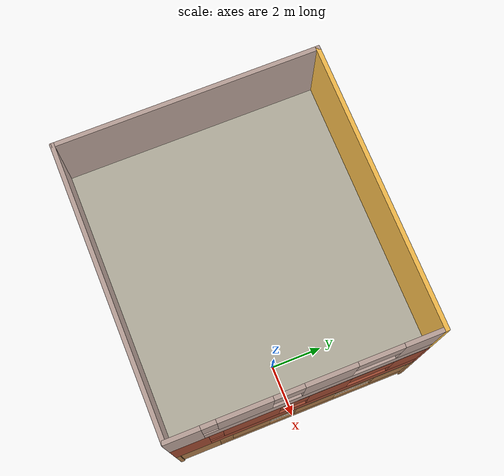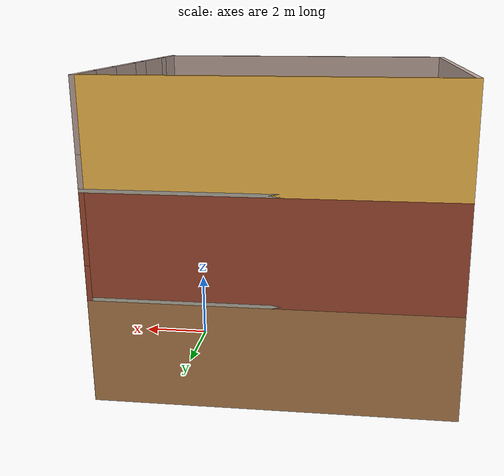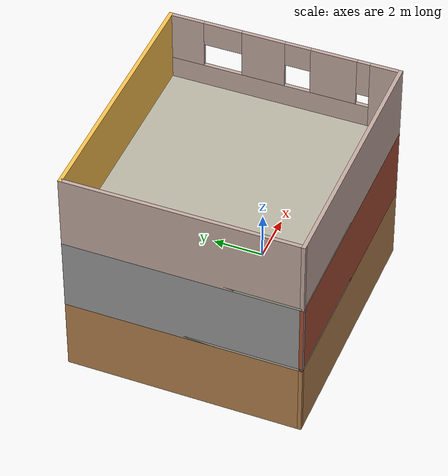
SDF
<?xml version='1.0'?>
<sdf version='1.6'>
  <model name='predio'>
    <pose frame=''>-2.925 0 0 0 -0 0</pose>
    <link name='Floor_2'>
      <collision name='Floor_2_Collision'>
        <geometry>
          <box>
            <size>10 9.15 0.1</size>
          </box>
        </geometry>
        <pose frame=''>0 0 0.05 0 -0 0</pose>
      </collision>
      <visual name='Floor_2_Visual'>
        <pose frame=''>0 0 0.05 0 -0 0</pose>
        <geometry>
          <box>
            <size>10 9.15 0.1</size>
          </box>
        </geometry>
        <material>
          <script>
            <uri>file://media/materials/scripts/gazebo.material</uri>
            <name>Gazebo/Grey</name>
          </script>
          <ambient>0.729412 0.709804 0.643137 1</ambient>
        </material>
        <meta>
          <layer>1</layer>
        </meta>
      </visual>
      <pose frame=''>0 0 3 0 -0 0</pose>
    </link>
    <link name='Floor_3'>
      <collision name='Floor_3_Collision'>
        <geometry>
          <box>
            <size>10 9.15 0.1</size>
          </box>
        </geometry>
        <pose frame=''>0 0 0.05 0 -0 0</pose>
      </collision>
      <visual name='Floor_3_Visual'>
        <pose frame=''>0 0 0.05 0 -0 0</pose>
        <geometry>
          <box>
            <size>10 9.15 0.1</size>
          </box>
        </geometry>
        <material>
          <script>
            <uri>file://media/materials/scripts/gazebo.material</uri>
            <name>Gazebo/Grey</name>
          </script>
          <ambient>0.729412 0.709804 0.643137 1</ambient>
        </material>
        <meta>
          <layer>2</layer>
        </meta>
      </visual>
      <pose frame=''>0 0 6 0 -0 0</pose>
    </link>
    <link name='Wall_10'>
      <pose frame=''>4.925 0 0 0 -0 1.5708</pose>
      <visual name='Wall_10_Visual_0'>
        <pose frame=''>-3.7277 0 1.5 0 -0 0</pose>
        <geometry>
          <box>
            <size>1.5946 0.05 3</size>
          </box>
        </geometry>
        <material>
          <script>
            <uri>file://media/materials/scripts/gazebo.material</uri>
            <name>Gazebo/Wood</name>
          </script>
          <ambient>1 1 1 1</ambient>
        </material>
        <meta>
          <layer>0</layer>
        </meta>
      </visual>
      <collision name='Wall_10_Collision_0'>
        <geometry>
          <box>
            <size>1.5946 0.05 3</size>
          </box>
        </geometry>
        <pose frame=''>-3.7277 0 1.5 0 -0 0</pose>
      </collision>
      <visual name='Wall_10_Visual_1'>
        <pose frame=''>0.797301 0 0.375 0 -0 0</pose>
        <geometry>
          <box>
            <size>7.4554 0.05 0.75</size>
          </box>
        </geometry>
        <material>
          <script>
            <uri>file://media/materials/scripts/gazebo.material</uri>
            <name>Gazebo/Wood</name>
          </script>
          <ambient>1 1 1 1</ambient>
        </material>
        <meta>
          <layer>0</layer>
        </meta>
      </visual>
      <collision name='Wall_10_Collision_1'>
        <geometry>
          <box>
            <size>7.4554 0.05 0.75</size>
          </box>
        </geometry>
        <pose frame=''>0.797301 0 0.375 0 -0 0</pose>
      </collision>
      <visual name='Wall_10_Visual_2'>
        <pose frame=''>-1.69976 0 1.875 0 -0 0</pose>
        <geometry>
          <box>
            <size>1.46128 0.05 2.25</size>
          </box>
        </geometry>
        <material>
          <script>
            <uri>file://media/materials/scripts/gazebo.material</uri>
            <name>Gazebo/Wood</name>
          </script>
          <ambient>1 1 1 1</ambient>
        </material>
        <meta>
          <layer>0</layer>
        </meta>
      </visual>
      <collision name='Wall_10_Collision_2'>
        <geometry>
          <box>
            <size>1.46128 0.05 2.25</size>
          </box>
        </geometry>
        <pose frame=''>-1.69976 0 1.875 0 -0 0</pose>
      </collision>
      <visual name='Wall_10_Visual_3'>
        <pose frame=''>0.817168 0 1.875 0 -0 0</pose>
        <geometry>
          <box>
            <size>1.57256 0.05 2.25</size>
          </box>
        </geometry>
        <material>
          <script>
            <uri>file://media/materials/scripts/gazebo.material</uri>
            <name>Gazebo/Wood</name>
          </script>
          <ambient>1 1 1 1</ambient>
        </material>
        <meta>
          <layer>0</layer>
        </meta>
      </visual>
      <collision name='Wall_10_Collision_3'>
        <geometry>
          <box>
            <size>1.57256 0.05 2.25</size>
          </box>
        </geometry>
        <pose frame=''>0.817168 0 1.875 0 -0 0</pose>
      </collision>
      <visual name='Wall_10_Visual_4'>
        <pose frame=''>3.81422 0 1.875 0 -0 0</pose>
        <geometry>
          <box>
            <size>1.42155 0.05 2.25</size>
          </box>
        </geometry>
        <material>
          <script>
            <uri>file://media/materials/scripts/gazebo.material</uri>
            <name>Gazebo/Wood</name>
          </script>
          <ambient>1 1 1 1</ambient>
        </material>
        <meta>
          <layer>0</layer>
        </meta>
      </visual>
      <collision name='Wall_10_Collision_4'>
        <geometry>
          <box>
            <size>1.42155 0.05 2.25</size>
          </box>
        </geometry>
        <pose frame=''>3.81422 0 1.875 0 -0 0</pose>
      </collision>
      <visual name='Wall_10_Visual_5'>
        <pose frame=''>-2.6804 0 2.125 0 -0 0</pose>
        <geometry>
          <box>
            <size>0.5 0.05 1.75</size>
          </box>
        </geometry>
        <material>
          <script>
            <uri>file://media/materials/scripts/gazebo.material</uri>
            <name>Gazebo/Wood</name>
          </script>
          <ambient>1 1 1 1</ambient>
        </material>
        <meta>
          <layer>0</layer>
        </meta>
      </visual>
      <collision name='Wall_10_Collision_5'>
        <geometry>
          <box>
            <size>0.5 0.05 1.75</size>
          </box>
        </geometry>
        <pose frame=''>-2.6804 0 2.125 0 -0 0</pose>
      </collision>
      <visual name='Wall_10_Visual_6'>
        <pose frame=''>-0.469115 0 2.375 0 -0 0</pose>
        <geometry>
          <box>
            <size>1 0.05 1.25</size>
          </box>
        </geometry>
        <material>
          <script>
            <uri>file://media/materials/scripts/gazebo.material</uri>
            <name>Gazebo/Wood</name>
          </script>
          <ambient>1 1 1 1</ambient>
        </material>
        <meta>
          <layer>0</layer>
        </meta>
      </visual>
      <collision name='Wall_10_Collision_6'>
        <geometry>
          <box>
            <size>1 0.05 1.25</size>
          </box>
        </geometry>
        <pose frame=''>-0.469115 0 2.375 0 -0 0</pose>
      </collision>
      <visual name='Wall_10_Visual_7'>
        <pose frame=''>2.35345 0 2.375 0 -0 0</pose>
        <geometry>
          <box>
            <size>1.5 0.05 1.25</size>
          </box>
        </geometry>
        <material>
          <script>
            <uri>file://media/materials/scripts/gazebo.material</uri>
            <name>Gazebo/Wood</name>
          </script>
          <ambient>1 1 1 1</ambient>
        </material>
        <meta>
          <layer>0</layer>
        </meta>
      </visual>
      <collision name='Wall_10_Collision_7'>
        <geometry>
          <box>
            <size>1.5 0.05 1.25</size>
          </box>
        </geometry>
        <pose frame=''>2.35345 0 2.375 0 -0 0</pose>
      </collision>
    </link>
    <link name='Wall_14'>
      <collision name='Wall_14_Collision'>
        <geometry>
          <box>
            <size>10 0.15 3</size>
          </box>
        </geometry>
        <pose frame=''>0 0 1.5 0 -0 0</pose>
      </collision>
      <visual name='Wall_14_Visual'>
        <pose frame=''>0 0 1.5 0 -0 0</pose>
        <geometry>
          <box>
            <size>10 0.15 3</size>
          </box>
        </geometry>
        <material>
          <script>
            <uri>file://media/materials/scripts/gazebo.material</uri>
            <name>Gazebo/Wood</name>
          </script>
          <ambient>1 1 1 1</ambient>
        </material>
        <meta>
          <layer>0</layer>
        </meta>
      </visual>
      <pose frame=''>0 -4.5 0 0 -0 3.14159</pose>
    </link>
    <link name='Wall_15'>
      <collision name='Wall_15_Collision'>
        <geometry>
          <box>
            <size>9.15 0.15 3</size>
          </box>
        </geometry>
        <pose frame=''>0 0 1.5 0 -0 0</pose>
      </collision>
      <visual name='Wall_15_Visual'>
        <pose frame=''>0 0 1.5 0 -0 0</pose>
        <geometry>
          <box>
            <size>9.15 0.15 3</size>
          </box>
        </geometry>
        <material>
          <script>
            <uri>file://media/materials/scripts/gazebo.material</uri>
            <name>Gazebo/Wood</name>
          </script>
          <ambient>1 1 1 1</ambient>
        </material>
        <meta>
          <layer>0</layer>
        </meta>
      </visual>
      <pose frame=''>-4.925 0 0 0 -0 1.5708</pose>
    </link>
    <link name='Wall_18'>
      <collision name='Wall_18_Collision'>
        <geometry>
          <box>
            <size>10 0.15 3</size>
          </box>
        </geometry>
        <pose frame=''>0 0 1.5 0 -0 0</pose>
      </collision>
      <visual name='Wall_18_Visual'>
        <pose frame=''>0 0 1.5 0 -0 0</pose>
        <geometry>
          <box>
            <size>10 0.15 3</size>
          </box>
        </geometry>
        <material>
          <script>
            <uri>file://media/materials/scripts/gazebo.material</uri>
            <name>Gazebo/Wood</name>
          </script>
          <ambient>1 1 1 1</ambient>
        </material>
        <meta>
          <layer>0</layer>
        </meta>
      </visual>
      <pose frame=''>0 4.5 0 0 -0 3.14159</pose>
    </link>
    <link name='Wall_28'>
      <pose frame=''>4.925 0 3 0 -0 1.5708</pose>
      <visual name='Wall_28_Visual_0'>
        <pose frame=''>-3.90461 0 1.5 0 -0 0</pose>
        <geometry>
          <box>
            <size>1.34077 0.15 3</size>
          </box>
        </geometry>
        <material>
          <script>
            <uri>file://media/materials/scripts/gazebo.material</uri>
            <name>Gazebo/Bricks</name>
          </script>
          <ambient>1 1 1 1</ambient>
        </material>
        <meta>
          <layer>1</layer>
        </meta>
      </visual>
      <collision name='Wall_28_Collision_0'>
        <geometry>
          <box>
            <size>1.34077 0.15 3</size>
          </box>
        </geometry>
        <pose frame=''>-3.90461 0 1.5 0 -0 0</pose>
      </collision>
      <visual name='Wall_28_Visual_1'>
        <pose frame=''>0.670387 0 0.5 0 -0 0</pose>
        <geometry>
          <box>
            <size>7.80923 0.15 1</size>
          </box>
        </geometry>
        <material>
          <script>
            <uri>file://media/materials/scripts/gazebo.material</uri>
            <name>Gazebo/Bricks</name>
          </script>
          <ambient>1 1 1 1</ambient>
        </material>
        <meta>
          <layer>1</layer>
        </meta>
      </visual>
      <collision name='Wall_28_Collision_1'>
        <geometry>
          <box>
            <size>7.80923 0.15 1</size>
          </box>
        </geometry>
        <pose frame=''>0.670387 0 0.5 0 -0 0</pose>
      </collision>
      <visual name='Wall_28_Visual_2'>
        <pose frame=''>-1.73374 0 2 0 -0 0</pose>
        <geometry>
          <box>
            <size>2.00098 0.15 2</size>
          </box>
        </geometry>
        <material>
          <script>
            <uri>file://media/materials/scripts/gazebo.material</uri>
            <name>Gazebo/Bricks</name>
          </script>
          <ambient>1 1 1 1</ambient>
        </material>
        <meta>
          <layer>1</layer>
        </meta>
      </visual>
      <collision name='Wall_28_Collision_2'>
        <geometry>
          <box>
            <size>2.00098 0.15 2</size>
          </box>
        </geometry>
        <pose frame=''>-1.73374 0 2 0 -0 0</pose>
      </collision>
      <visual name='Wall_28_Visual_3'>
        <pose frame=''>1.01724 0 2 0 -0 0</pose>
        <geometry>
          <box>
            <size>1.50098 0.15 2</size>
          </box>
        </geometry>
        <material>
          <script>
            <uri>file://media/materials/scripts/gazebo.material</uri>
            <name>Gazebo/Bricks</name>
          </script>
          <ambient>1 1 1 1</ambient>
        </material>
        <meta>
          <layer>1</layer>
        </meta>
      </visual>
      <collision name='Wall_28_Collision_3'>
        <geometry>
          <box>
            <size>1.50098 0.15 2</size>
          </box>
        </geometry>
        <pose frame=''>1.01724 0 2 0 -0 0</pose>
      </collision>
      <visual name='Wall_28_Visual_4'>
        <pose frame=''>3.92137 0 2 0 -0 0</pose>
        <geometry>
          <box>
            <size>1.30727 0.15 2</size>
          </box>
        </geometry>
        <material>
          <script>
            <uri>file://media/materials/scripts/gazebo.material</uri>
            <name>Gazebo/Bricks</name>
          </script>
          <ambient>1 1 1 1</ambient>
        </material>
        <meta>
          <layer>1</layer>
        </meta>
      </visual>
      <collision name='Wall_28_Collision_4'>
        <geometry>
          <box>
            <size>1.30727 0.15 2</size>
          </box>
        </geometry>
        <pose frame=''>3.92137 0 2 0 -0 0</pose>
      </collision>
      <visual name='Wall_28_Visual_5'>
        <pose frame=''>-2.98423 0 2.25 0 -0 0</pose>
        <geometry>
          <box>
            <size>0.5 0.15 1.5</size>
          </box>
        </geometry>
        <material>
          <script>
            <uri>file://media/materials/scripts/gazebo.material</uri>
            <name>Gazebo/Bricks</name>
          </script>
          <ambient>1 1 1 1</ambient>
        </material>
        <meta>
          <layer>1</layer>
        </meta>
      </visual>
      <collision name='Wall_28_Collision_5'>
        <geometry>
          <box>
            <size>0.5 0.15 1.5</size>
          </box>
        </geometry>
        <pose frame=''>-2.98423 0 2.25 0 -0 0</pose>
      </collision>
      <visual name='Wall_28_Visual_6'>
        <pose frame=''>-0.233247 0 2.5 0 -0 0</pose>
        <geometry>
          <box>
            <size>1 0.15 1</size>
          </box>
        </geometry>
        <material>
          <script>
            <uri>file://media/materials/scripts/gazebo.material</uri>
            <name>Gazebo/Bricks</name>
          </script>
          <ambient>1 1 1 1</ambient>
        </material>
        <meta>
          <layer>1</layer>
        </meta>
      </visual>
      <collision name='Wall_28_Collision_6'>
        <geometry>
          <box>
            <size>1 0.15 1</size>
          </box>
        </geometry>
        <pose frame=''>-0.233247 0 2.5 0 -0 0</pose>
      </collision>
      <visual name='Wall_28_Visual_7'>
        <pose frame=''>2.51773 0 2.5 0 -0 0</pose>
        <geometry>
          <box>
            <size>1.5 0.15 1</size>
          </box>
        </geometry>
        <material>
          <script>
            <uri>file://media/materials/scripts/gazebo.material</uri>
            <name>Gazebo/Bricks</name>
          </script>
          <ambient>1 1 1 1</ambient>
        </material>
        <meta>
          <layer>1</layer>
        </meta>
      </visual>
      <collision name='Wall_28_Collision_7'>
        <geometry>
          <box>
            <size>1.5 0.15 1</size>
          </box>
        </geometry>
        <pose frame=''>2.51773 0 2.5 0 -0 0</pose>
      </collision>
    </link>
    <link name='Wall_29'>
      <collision name='Wall_29_Collision'>
        <geometry>
          <box>
            <size>10 0.15 3</size>
          </box>
        </geometry>
        <pose frame=''>0 0 1.5 0 -0 0</pose>
      </collision>
      <visual name='Wall_29_Visual'>
        <pose frame=''>0 0 1.5 0 -0 0</pose>
        <geometry>
          <box>
            <size>10 0.15 3</size>
          </box>
        </geometry>
        <material>
          <script>
            <uri>file://media/materials/scripts/gazebo.material</uri>
            <name>Gazebo/Bricks</name>
          </script>
          <ambient>1 1 1 1</ambient>
        </material>
        <meta>
          <layer>1</layer>
        </meta>
      </visual>
      <pose frame=''>0 -4.5 3 0 -0 3.14159</pose>
    </link>
    <link name='Wall_30'>
      <collision name='Wall_30_Collision'>
        <geometry>
          <box>
            <size>9.15 0.15 3</size>
          </box>
        </geometry>
        <pose frame=''>0 0 1.5 0 -0 0</pose>
      </collision>
      <visual name='Wall_30_Visual'>
        <pose frame=''>0 0 1.5 0 -0 0</pose>
        <geometry>
          <box>
            <size>9.15 0.15 3</size>
          </box>
        </geometry>
        <material>
          <script>
            <uri>file://media/materials/scripts/gazebo.material</uri>
            <name>Gazebo/Grey</name>
          </script>
          <ambient>1 1 1 1</ambient>
        </material>
        <meta>
          <layer>1</layer>
        </meta>
      </visual>
      <pose frame=''>-4.925 0 3 0 -0 1.5708</pose>
    </link>
    <link name='Wall_31'>
      <collision name='Wall_31_Collision'>
        <geometry>
          <box>
            <size>10 0.15 3</size>
          </box>
        </geometry>
        <pose frame=''>0 0 1.5 0 -0 0</pose>
      </collision>
      <visual name='Wall_31_Visual'>
        <pose frame=''>0 0 1.5 0 -0 0</pose>
        <geometry>
          <box>
            <size>10 0.15 3</size>
          </box>
        </geometry>
        <material>
          <script>
            <uri>file://media/materials/scripts/gazebo.material</uri>
            <name>Gazebo/Bricks</name>
          </script>
          <ambient>1 1 1 1</ambient>
        </material>
        <meta>
          <layer>1</layer>
        </meta>
      </visual>
      <pose frame=''>0 4.5 3 0 -0 3.14159</pose>
    </link>
    <link name='Wall_32'>
      <pose frame=''>4.925 0 6 0 -0 1.5708</pose>
      <visual name='Wall_32_Visual_0'>
        <pose frame=''>-3.9653 0 1.5 0 -0 0</pose>
        <geometry>
          <box>
            <size>1.21941 0.15 3</size>
          </box>
        </geometry>
        <material>
          <script>
            <uri>file://media/materials/scripts/gazebo.material</uri>
            <name>Gazebo/Grey</name>
          </script>
          <ambient>0.760784 0.662745 0.627451 1</ambient>
        </material>
        <meta>
          <layer>2</layer>
        </meta>
      </visual>
      <collision name='Wall_32_Collision_0'>
        <geometry>
          <box>
            <size>1.21941 0.15 3</size>
          </box>
        </geometry>
        <pose frame=''>-3.9653 0 1.5 0 -0 0</pose>
      </collision>
      <visual name='Wall_32_Visual_1'>
        <pose frame=''>0.609704 0 0.5 0 -0 0</pose>
        <geometry>
          <box>
            <size>7.93059 0.15 1</size>
          </box>
        </geometry>
        <material>
          <script>
            <uri>file://media/materials/scripts/gazebo.material</uri>
            <name>Gazebo/Grey</name>
          </script>
          <ambient>0.760784 0.662745 0.627451 1</ambient>
        </material>
        <meta>
          <layer>2</layer>
        </meta>
      </visual>
      <collision name='Wall_32_Collision_1'>
        <geometry>
          <box>
            <size>7.93059 0.15 1</size>
          </box>
        </geometry>
        <pose frame=''>0.609704 0 0.5 0 -0 0</pose>
      </collision>
      <visual name='Wall_32_Visual_2'>
        <pose frame=''>-1.95624 0 2 0 -0 0</pose>
        <geometry>
          <box>
            <size>1.7987 0.15 2</size>
          </box>
        </geometry>
        <material>
          <script>
            <uri>file://media/materials/scripts/gazebo.material</uri>
            <name>Gazebo/Grey</name>
          </script>
          <ambient>0.760784 0.662745 0.627451 1</ambient>
        </material>
        <meta>
          <layer>2</layer>
        </meta>
      </visual>
      <collision name='Wall_32_Collision_2'>
        <geometry>
          <box>
            <size>1.7987 0.15 2</size>
          </box>
        </geometry>
        <pose frame=''>-1.95624 0 2 0 -0 0</pose>
      </collision>
      <visual name='Wall_32_Visual_3'>
        <pose frame=''>0.794737 0 2 0 -0 0</pose>
        <geometry>
          <box>
            <size>1.70326 0.15 2</size>
          </box>
        </geometry>
        <material>
          <script>
            <uri>file://media/materials/scripts/gazebo.material</uri>
            <name>Gazebo/Grey</name>
          </script>
          <ambient>0.760784 0.662745 0.627451 1</ambient>
        </material>
        <meta>
          <layer>2</layer>
        </meta>
      </visual>
      <collision name='Wall_32_Collision_3'>
        <geometry>
          <box>
            <size>1.70326 0.15 2</size>
          </box>
        </geometry>
        <pose frame=''>0.794737 0 2 0 -0 0</pose>
      </collision>
      <visual name='Wall_32_Visual_4'>
        <pose frame=''>3.86068 0 2 0 -0 0</pose>
        <geometry>
          <box>
            <size>1.42864 0.15 2</size>
          </box>
        </geometry>
        <material>
          <script>
            <uri>file://media/materials/scripts/gazebo.material</uri>
            <name>Gazebo/Grey</name>
          </script>
          <ambient>0.760784 0.662745 0.627451 1</ambient>
        </material>
        <meta>
          <layer>2</layer>
        </meta>
      </visual>
      <collision name='Wall_32_Collision_4'>
        <geometry>
          <box>
            <size>1.42864 0.15 2</size>
          </box>
        </geometry>
        <pose frame=''>3.86068 0 2 0 -0 0</pose>
      </collision>
      <visual name='Wall_32_Visual_5'>
        <pose frame=''>-3.10559 0 2.25 0 -0 0</pose>
        <geometry>
          <box>
            <size>0.5 0.15 1.5</size>
          </box>
        </geometry>
        <material>
          <script>
            <uri>file://media/materials/scripts/gazebo.material</uri>
            <name>Gazebo/Grey</name>
          </script>
          <ambient>0.760784 0.662745 0.627451 1</ambient>
        </material>
        <meta>
          <layer>2</layer>
        </meta>
      </visual>
      <collision name='Wall_32_Collision_5'>
        <geometry>
          <box>
            <size>0.5 0.15 1.5</size>
          </box>
        </geometry>
        <pose frame=''>-3.10559 0 2.25 0 -0 0</pose>
      </collision>
      <visual name='Wall_32_Visual_6'>
        <pose frame=''>-0.556892 0 2.5 0 -0 0</pose>
        <geometry>
          <box>
            <size>1 0.15 1</size>
          </box>
        </geometry>
        <material>
          <script>
            <uri>file://media/materials/scripts/gazebo.material</uri>
            <name>Gazebo/Grey</name>
          </script>
          <ambient>0.760784 0.662745 0.627451 1</ambient>
        </material>
        <meta>
          <layer>2</layer>
        </meta>
      </visual>
      <collision name='Wall_32_Collision_6'>
        <geometry>
          <box>
            <size>1 0.15 1</size>
          </box>
        </geometry>
        <pose frame=''>-0.556892 0 2.5 0 -0 0</pose>
      </collision>
      <visual name='Wall_32_Visual_7'>
        <pose frame=''>2.39636 0 2.5 0 -0 0</pose>
        <geometry>
          <box>
            <size>1.5 0.15 1</size>
          </box>
        </geometry>
        <material>
          <script>
            <uri>file://media/materials/scripts/gazebo.material</uri>
            <name>Gazebo/Grey</name>
          </script>
          <ambient>0.760784 0.662745 0.627451 1</ambient>
        </material>
        <meta>
          <layer>2</layer>
        </meta>
      </visual>
      <collision name='Wall_32_Collision_7'>
        <geometry>
          <box>
            <size>1.5 0.15 1</size>
          </box>
        </geometry>
        <pose frame=''>2.39636 0 2.5 0 -0 0</pose>
      </collision>
    </link>
    <link name='Wall_33'>
      <collision name='Wall_33_Collision'>
        <geometry>
          <box>
            <size>10 0.15 3</size>
          </box>
        </geometry>
        <pose frame=''>0 0 1.5 0 -0 0</pose>
      </collision>
      <visual name='Wall_33_Visual'>
        <pose frame=''>0 0 1.5 0 -0 0</pose>
        <geometry>
          <box>
            <size>10 0.15 3</size>
          </box>
        </geometry>
        <material>
          <script>
            <uri>file://media/materials/scripts/gazebo.material</uri>
            <name>Gazebo/Grey</name>
          </script>
          <ambient>0.760784 0.662745 0.627451 1</ambient>
        </material>
        <meta>
          <layer>2</layer>
        </meta>
      </visual>
      <pose frame=''>0 -4.5 6 0 -0 3.14159</pose>
    </link>
    <link name='Wall_34'>
      <collision name='Wall_34_Collision'>
        <geometry>
          <box>
            <size>9.15 0.15 3</size>
          </box>
        </geometry>
        <pose frame=''>0 0 1.5 0 -0 0</pose>
      </collision>
      <visual name='Wall_34_Visual'>
        <pose frame=''>0 0 1.5 0 -0 0</pose>
        <geometry>
          <box>
            <size>9.15 0.15 3</size>
          </box>
        </geometry>
        <material>
          <script>
            <uri>file://media/materials/scripts/gazebo.material</uri>
            <name>Gazebo/Grey</name>
          </script>
          <ambient>0.760784 0.662745 0.627451 1</ambient>
        </material>
        <meta>
          <layer>2</layer>
        </meta>
      </visual>
      <pose frame=''>-4.925 0 6 0 -0 1.5708</pose>
    </link>
    <link name='Wall_35'>
      <collision name='Wall_35_Collision'>
        <geometry>
          <box>
            <size>10 0.15 3</size>
          </box>
        </geometry>
        <pose frame=''>0 0 1.5 0 -0 0</pose>
      </collision>
      <visual name='Wall_35_Visual'>
        <pose frame=''>0 0 1.5 0 -0 0</pose>
        <geometry>
          <box>
            <size>10 0.15 3</size>
          </box>
        </geometry>
        <material>
          <script>
            <uri>file://media/materials/scripts/gazebo.material</uri>
            <name>Gazebo/Grey</name>
          </script>
          <ambient>1 0.764706 0.305882 1</ambient>
        </material>
        <meta>
          <layer>2</layer>
        </meta>
      </visual>
      <pose frame=''>0 4.5 6 0 -0 3.14159</pose>
    </link>
    <static>1</static>
  </model>
</sdf>
